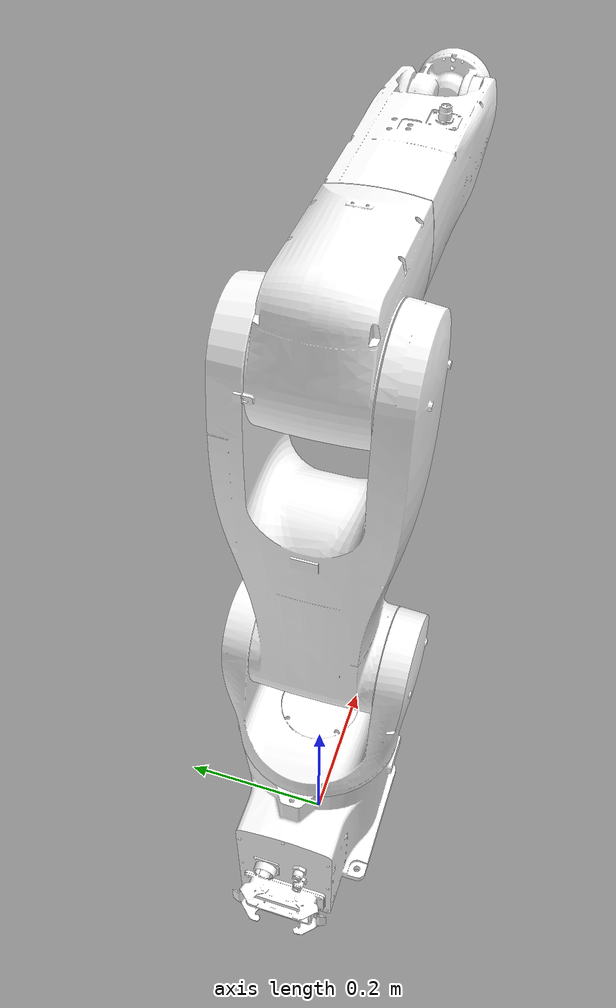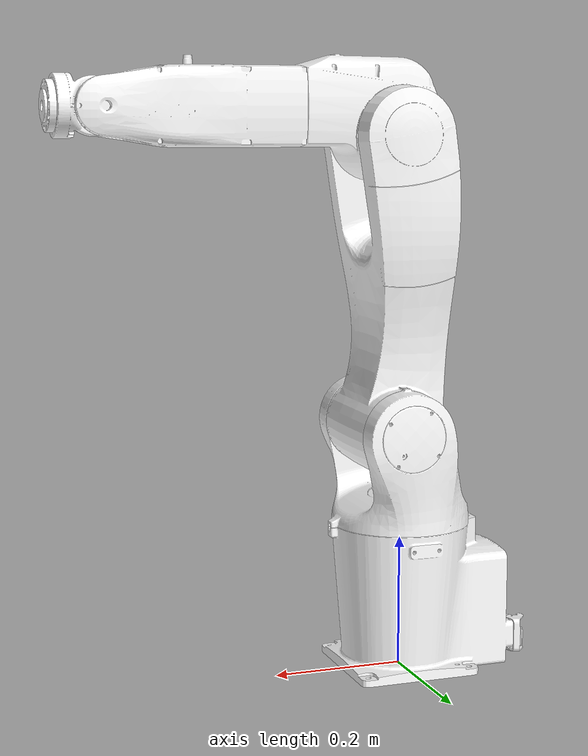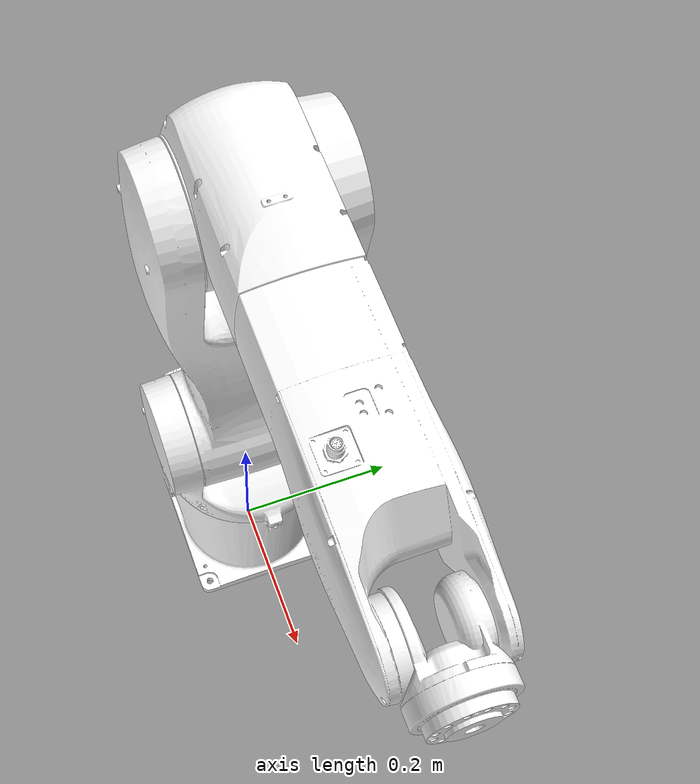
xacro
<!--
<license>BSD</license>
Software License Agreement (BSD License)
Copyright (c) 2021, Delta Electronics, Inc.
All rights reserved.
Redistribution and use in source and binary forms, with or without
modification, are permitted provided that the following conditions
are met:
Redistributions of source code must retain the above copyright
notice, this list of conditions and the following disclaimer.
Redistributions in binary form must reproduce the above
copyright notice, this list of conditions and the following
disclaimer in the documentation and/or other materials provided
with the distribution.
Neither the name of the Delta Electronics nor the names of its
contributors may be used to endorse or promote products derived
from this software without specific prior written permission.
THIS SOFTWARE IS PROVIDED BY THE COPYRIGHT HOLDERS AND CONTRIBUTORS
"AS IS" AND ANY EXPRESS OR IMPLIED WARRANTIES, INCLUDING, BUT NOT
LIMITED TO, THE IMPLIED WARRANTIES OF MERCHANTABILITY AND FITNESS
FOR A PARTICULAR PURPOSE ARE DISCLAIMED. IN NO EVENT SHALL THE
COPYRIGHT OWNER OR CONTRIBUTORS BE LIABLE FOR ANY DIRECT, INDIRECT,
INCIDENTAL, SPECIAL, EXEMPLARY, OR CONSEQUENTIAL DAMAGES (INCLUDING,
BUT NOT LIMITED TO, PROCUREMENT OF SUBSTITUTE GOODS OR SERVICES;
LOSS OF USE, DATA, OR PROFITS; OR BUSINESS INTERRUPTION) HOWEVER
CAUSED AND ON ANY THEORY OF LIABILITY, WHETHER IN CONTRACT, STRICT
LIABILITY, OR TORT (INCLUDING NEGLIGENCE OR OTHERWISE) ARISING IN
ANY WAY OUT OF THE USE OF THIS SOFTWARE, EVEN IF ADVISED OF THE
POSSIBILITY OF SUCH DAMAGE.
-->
<?xml version="1.0" ?>

<robot name="delta_drv90l" xmlns:xacro="http://ros.org/wiki/xacro">

  <xacro:arg name="arm_prefix" default="" />
  <xacro:arg name="drv90l_gazebo" default="false" />
  <xacro:include filename="$(find delta_drv90l_support)/urdf/drv90l_macro.xacro"/>

  <link name="base_footprint" />
  <joint name="base_joint" type="fixed">
    <origin xyz="0 0 0" rpy="0 0 0" />
    <parent link="base_footprint" />
    <child link="$(arg arm_prefix)base_link" />
    <axis xyz="0 0 0" />
  </joint>

  <xacro:delta_drv90l prefix="$(arg arm_prefix)"/>

  <!-- Gazebo -->
  <xacro:if value="$(arg drv90l_gazebo)">
    <xacro:include filename="$(find delta_drv90l_support)/urdf/drv90l.gazebo"/>

    <link name="world" />
    <joint name="world_joint" type="fixed">
      <origin xyz="0 0 0" rpy="0 0 0" />
      <parent link="world" />
      <child link="$(arg arm_prefix)base_footprint" />
      <axis xyz="0 0 0" />
    </joint>

    <xacro:drv90l_gazebo gazebo_robot_name="$(arg arm_prefix)"/>
    <xacro:transmission_block prefix="$(arg arm_prefix)"/>
  </xacro:if>

</robot>

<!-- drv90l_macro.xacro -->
<robot xmlns:xacro="http://ros.org/wiki/xacro">

<xacro:macro name="delta_drv90l" params="prefix">
  <!-- properties -->
  <xacro:property name="path_meshes_" value="package://delta_drv90l_support/meshes"/>
  <xacro:property name="arm_joint1_" value="${radians(170)}"/>
  <xacro:property name="arm_joint2_lower_" value="${radians(105)}"/>
  <xacro:property name="arm_joint2_upper_" value="${radians(135)}"/>
  <xacro:property name="arm_joint3_lower_" value="${radians(205)}"/>
  <xacro:property name="arm_joint3_upper_" value="${radians(65)}"/>
  <xacro:property name="arm_joint4_" value="${radians(190)}"/>
  <xacro:property name="arm_joint5_" value="${radians(120)}"/>
  <xacro:property name="arm_joint6_" value="${radians(360)}"/>
  <xacro:property name="arm_joint1_vel_" value="${radians(370)}"/>
  <xacro:property name="arm_joint2_vel_" value="${radians(260)}"/>
  <xacro:property name="arm_joint3_vel_" value="${radians(410)}"/>
  <xacro:property name="arm_joint4_vel_" value="${radians(550)}"/>
  <xacro:property name="arm_joint5_vel_" value="${radians(550)}"/>
  <xacro:property name="arm_joint6_vel_" value="${radians(820)}"/>
  <!-- properties -->

  <!-- link list -->
  <link name="${prefix}base_link">
    <inertial>
      <origin xyz="0 0 0" rpy="0 0 0" />
      <mass value="1.0" />
      <inertia ixx="1" ixy="0" ixz="0"
                       iyy="1" iyz="0"
                               izz="1" />
    </inertial>
    <visual>
      <origin xyz="0 0 0" rpy="0 0 0" />
      <geometry>
        <mesh filename="${path_meshes_}/drv90l/visual/base_link.STL"/>
      </geometry>
      <material name="visual_material">
        <color rgba="1 1 1 1"/>
      </material>
    </visual>
    <collision>
      <origin xyz="0 0 0" rpy="0 0 0" />
      <geometry>
        <mesh filename="${path_meshes_}/drv90l/visual/base_link.STL"/>
      </geometry>
      <material name="collision_material">
        <color rgba="1 1 1 1"/>
      </material>
    </collision>
  </link>

  <link name="${prefix}link_1">
    <inertial>
      <origin xyz="0 0 0" rpy="0 0 0" />
      <mass value="1.0" />
      <inertia ixx="1" ixy="0" ixz="0"
                       iyy="1" iyz="0"
                               izz="1" />
    </inertial>
    <visual>
      <origin xyz="0 0 0" rpy="0 0 0" />
      <geometry>
        <mesh filename="${path_meshes_}/drv90l/visual/link_1.STL"/>
      </geometry>
      <material name="visual_material"/>
    </visual>
    <collision>
      <origin xyz="0 0 0" rpy="0 0 0" />
      <geometry>
        <mesh filename="${path_meshes_}/drv90l/visual/link_1.STL"/>
      </geometry>
      <material name="collision_material"/>
    </collision>
  </link>

  <link name="${prefix}link_2">
    <inertial>
      <origin xyz="0 0 0" rpy="0 0 0" />
      <mass value="1.0" />
      <inertia ixx="1" ixy="0" ixz="0"
                       iyy="1" iyz="0"
                               izz="1" />
    </inertial>
    <visual>
      <origin xyz="0 0 0" rpy="0 0 0" />
      <geometry>
        <mesh filename="${path_meshes_}/drv90l/visual/link_2.STL"/>
      </geometry>
      <material name="visual_material"/>
    </visual>
    <collision>
      <origin xyz="0 0 0" rpy="0 0 0" />
      <geometry>
        <mesh filename="${path_meshes_}/drv90l/visual/link_2.STL"/>
      </geometry>
      <material name="collision_material"/>
    </collision>
  </link>

  <link name="${prefix}link_3">
    <inertial>
      <origin xyz="0 0 0" rpy="0 0 0" />
      <mass value="1.0" />
      <inertia ixx="1" ixy="0" ixz="0"
                       iyy="1" iyz="0"
                               izz="1" />
    </inertial>
    <visual>
      <origin xyz="0 0 0" rpy="0 0 0" />
      <geometry>
        <mesh filename="${path_meshes_}/drv90l/visual/link_3.STL"/>
      </geometry>
      <material name="visual_material"/>
    </visual>
    <collision>
      <origin xyz="0 0 0" rpy="0 0 0" />
      <geometry>
        <mesh filename="${path_meshes_}/drv90l/visual/link_3.STL"/>
      </geometry>
      <material name="collision_material"/>
    </collision>
  </link>

  <link name="${prefix}link_4">
    <inertial>
      <origin xyz="0 0 0" rpy="0 0 0" />
      <mass value="1.0" />
      <inertia ixx="1" ixy="0" ixz="0"
                       iyy="1" iyz="0"
                               izz="1" />
    </inertial>
    <visual>
      <origin xyz="0 0 0" rpy="0 0 0" />
      <geometry>
        <mesh filename="${path_meshes_}/drv90l/visual/link_4.STL"/>
      </geometry>
      <material name="visual_material"/>
    </visual>
    <collision>
      <origin xyz="0 0 0" rpy="0 0 0" />
      <geometry>
        <mesh filename="${path_meshes_}/drv90l/visual/link_4.STL"/>
      </geometry>
      <material name="collision_material"/>
    </collision>
  </link>

  <link name="${prefix}link_5">
    <inertial>
      <origin xyz="0 0 0" rpy="0 0 0" />
      <mass value="1.0" />
      <inertia ixx="1" ixy="0" ixz="0"
                       iyy="1" iyz="0"
                               izz="1" />
    </inertial>
    <visual>
      <origin xyz="0 0 0" rpy="0 0 0" />
      <geometry>
        <mesh filename="${path_meshes_}/drv90l/visual/link_5.STL"/>
      </geometry>
      <material name="visual_material"/>
    </visual>
    <collision>
      <origin xyz="0 0 0" rpy="0 0 0" />
      <geometry>
        <mesh filename="${path_meshes_}/drv90l/visual/link_5.STL"/>
      </geometry>
      <material name="collision_material"/>
    </collision>
  </link>

  <link name="${prefix}link_6">
    <inertial>
      <origin xyz="0 0 0" rpy="0 0 0" />
      <mass value="1.0" />
      <inertia ixx="1" ixy="0" ixz="0"
                       iyy="1" iyz="0"
                               izz="1" />
    </inertial>
    <visual>
      <origin xyz="0 0 0" rpy="0 0 0" />
      <geometry>
        <mesh filename="${path_meshes_}/drv90l/visual/link_6.STL"/>
      </geometry>
      <material name="visual_material"/>
    </visual>
    <collision>
      <origin xyz="0 0 0" rpy="0 0 0" />
      <geometry>
        <mesh filename="${path_meshes_}/drv90l/visual/link_6.STL"/>
      </geometry>
      <material name="collision_material"/>
    </collision>
  </link>
  <!-- end of link list -->

  <!-- joint list -->
  <joint name="${prefix}joint_1" type="revolute">
    <origin xyz="0 0 0.226" rpy="0 0 0" />
    <parent link="${prefix}base_link"/>
    <child link="${prefix}link_1"/>
    <axis xyz="0 0 1" />
    <limit
      lower="-${arm_joint1_}"
      upper="${arm_joint1_}"
      effort="0"
      velocity="${arm_joint1_vel_}" />
  </joint>

  <joint name="${prefix}joint_2" type="revolute">
    <origin xyz="0.025 0 0.148" rpy="0 0 0" />
    <parent link="${prefix}link_1"/>
    <child link="${prefix}link_2"/>
    <axis xyz="0 1 0" />
    <limit
      lower="-${arm_joint2_lower_}"
      upper="${arm_joint2_upper_}"
      effort="0"
      velocity="${arm_joint2_vel_}" />
  </joint>

  <joint name="${prefix}joint_3" type="revolute">
    <origin xyz="0 0 0.44" rpy="0 0 0" />
    <parent link="${prefix}link_2"/>
    <child link="${prefix}link_3"/>
    <axis xyz="0 1 0" />
    <limit
      lower="-${arm_joint3_lower_}"
      upper="${arm_joint3_upper_}"
      effort="0"
      velocity="${arm_joint3_vel_}" />
  </joint>

  <joint name="${prefix}joint_4" type="revolute">
    <origin xyz="0.145 0 0.04" rpy="0 0 0" />
    <parent link="${prefix}link_3"/>
    <child link="${prefix}link_4"/>
    <axis xyz="1 0 0" />
    <limit
      lower="-${arm_joint4_}"
      upper="${arm_joint4_}"
      effort="0"
      velocity="${arm_joint4_vel_}" />
  </joint>

  <joint name="${prefix}joint_5" type="revolute">
    <origin xyz="0.29 0 0" rpy="0 0 0" />
    <parent link="${prefix}link_4"/>
    <child link="${prefix}link_5"/>
    <axis xyz="0 1 0" />
    <limit
      lower="-${arm_joint5_}"
      upper="${arm_joint5_}"
      effort="0"
      velocity="${arm_joint5_vel_}" />
  </joint>

  <joint name="${prefix}joint_6" type="revolute">
    <origin xyz="0.064 0 0" rpy="0 0 0" />
    <parent link="${prefix}link_5"/>
    <child link="${prefix}link_6"/>
    <axis xyz="1 0 0" />
    <limit
      lower="-${arm_joint6_}"
      upper="${arm_joint6_}"
      effort="0"
      velocity="${arm_joint6_vel_}" />
  </joint>
  <!-- end of joint list -->

  <!-- ROS-Industrial 'base' frame: base_link to Delta World Coordinates transform -->
  <link name="${prefix}base" />
  <joint name="${prefix}base_link-base" type="fixed">
    <origin xyz="0 0 0" rpy="0 0 0" />
    <parent link="${prefix}base_link" />
    <child link="${prefix}base" />
  </joint>

  <!-- ROS-Industrial 'flange' frame: attachment point for EEF models -->
  <link name="${prefix}flange" />
  <joint name="${prefix}link_6-flange" type="fixed">
    <origin xyz="0.01 0 0" rpy="0 0 0" />
    <parent link="${prefix}link_6" />
    <child link="${prefix}flange" />
  </joint>

  <!-- ROS-Industrial 'tool0' frame: all-zeros tool frame -->
  <link name="${prefix}tool0" />
  <joint name="${prefix}flange-tool0" type="fixed">
    <origin xyz="0 0 0" rpy="0 ${radians(-90)} ${radians(180)}" />
    <parent link="${prefix}flange" />
    <child link="${prefix}tool0" />
  </joint>

</xacro:macro>
</robot>
